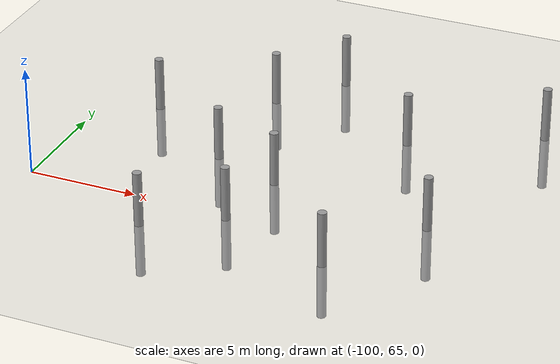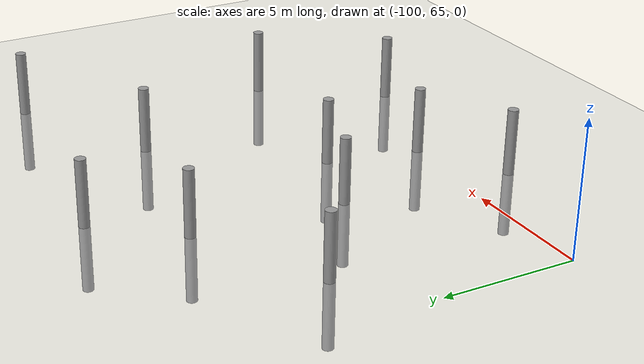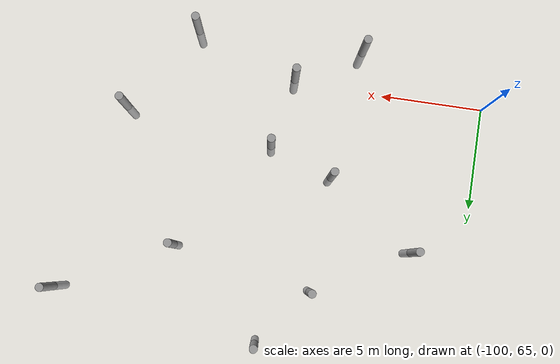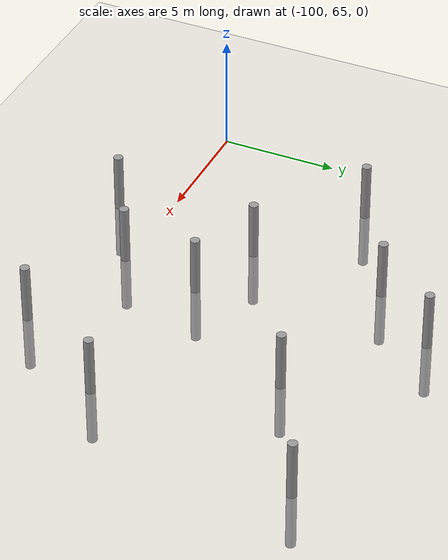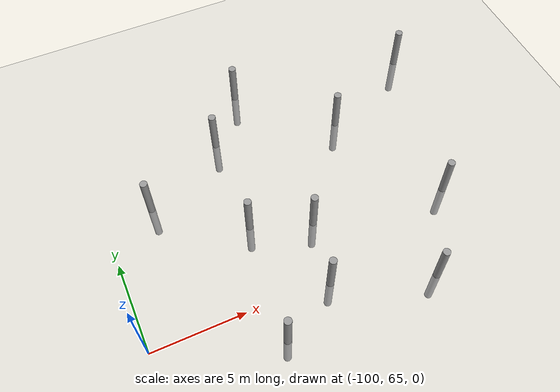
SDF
<sdf version="1.6">
 <world name="default">
  <model name="ground_plane">
   <static>1</static>
   <link name="link">
    <collision name="collision">
     <geometry><plane><normal>0 0 1</normal><size>100 100</size></plane></geometry>
     <surface><friction><ode><mu>100</mu><mu2>50</mu2></ode></friction></surface>
    </collision>
    <visual name="visual">
     <cast_shadows>0</cast_shadows>
     <geometry><plane><normal>0 0 1</normal><size>100 100</size></plane></geometry>
     <material>
      <script><uri>file://media/materials/scripts/gazebo.material</uri><name>Gazebo/Grey</name></script>
     </material>
    </visual>
   </link>
  </model>
  <model name="empty_pillars">
   <model name="empty_pillar">
    <link name="link">
     <inertial>
      <mass>1</mass>
      <inertia><ixx>0.145833</ixx><ixy>0</ixy><ixz>0</ixz><iyy>0.145833</iyy><iyz>0</iyz><izz>0.125</izz></inertia>
     </inertial>
     <visual name="visual">
      <geometry><cylinder><radius>0.2</radius><length>5</length></cylinder></geometry>
      <material>
       <script><name>Gazebo/Grey</name><uri>file://media/materials/scripts/gazebo.material</uri></script>
       <shader type="vertex"><normal_map>__default__</normal_map></shader>
       <ambient>0.3 0.3 0.3 1</ambient>
       <diffuse>0.7 0.7 0.7 1</diffuse>
       <specular>0.01 0.01 0.01 1</specular>
       <emissive>0 0 0 1</emissive>
      </material>
     </visual>
     <collision name="collision">
      <geometry><cylinder><radius>0.05</radius><length>5</length></cylinder></geometry>
      <surface>
       <friction>
        <ode><mu>1</mu><mu2>1</mu2><fdir1>0 0 0</fdir1><slip1>0</slip1><slip2>0</slip2></ode>
        <torsional>
         <coefficient>1</coefficient>
         <patch_radius>0</patch_radius>
         <surface_radius>0</surface_radius>
         <use_patch_radius>1</use_patch_radius>
         <ode><slip>0</slip></ode>
        </torsional>
       </friction>
       <bounce><restitution_coefficient>0</restitution_coefficient><threshold>1e+06</threshold></bounce>
       <contact>
        <collide_without_contact>0</collide_without_contact>
        <collide_without_contact_bitmask>1</collide_without_contact_bitmask>
        <collide_bitmask>1</collide_bitmask>
        <ode>
         <soft_cfm>0</soft_cfm>
         <soft_erp>0.2</soft_erp>
         <kp>1e+13</kp>
         <kd>1</kd>
         <max_vel>0.01</max_vel>
         <min_depth>0</min_depth>
        </ode>
        <bullet>
         <split_impulse>1</split_impulse>
         <split_impulse_penetration_threshold>-0.01</split_impulse_penetration_threshold>
         <soft_cfm>0</soft_cfm>
         <soft_erp>0.2</soft_erp>
         <kp>1e+13</kp>
         <kd>1</kd>
        </bullet>
       </contact>
      </surface>
     </collision>
    </link>
    <static>0</static>
    <pose>-3.84527 -0.717439 0 0 -0 0</pose>
   </model>
   <model name="empty_pillar_clone_13">
    <link name="link">
     <inertial>
      <mass>1</mass>
      <inertia><ixx>0.145833</ixx><ixy>0</ixy><ixz>0</ixz><iyy>0.145833</iyy><iyz>0</iyz><izz>0.125</izz></inertia>
     </inertial>
     <visual name="visual">
      <geometry><cylinder><radius>0.2</radius><length>5</length></cylinder></geometry>
      <material>
       <script><name>Gazebo/Grey</name><uri>file://media/materials/scripts/gazebo.material</uri></script>
       <shader type="vertex"><normal_map>__default__</normal_map></shader>
       <ambient>0.3 0.3 0.3 1</ambient>
       <diffuse>0.7 0.7 0.7 1</diffuse>
       <specular>0.01 0.01 0.01 1</specular>
       <emissive>0 0 0 1</emissive>
      </material>
     </visual>
     <collision name="collision">
      <geometry><cylinder><radius>0.05</radius><length>5</length></cylinder></geometry>
      <surface>
       <friction>
        <ode><mu>1</mu><mu2>1</mu2><fdir1>0 0 0</fdir1><slip1>0</slip1><slip2>0</slip2></ode>
        <torsional>
         <coefficient>1</coefficient>
         <patch_radius>0</patch_radius>
         <surface_radius>0</surface_radius>
         <use_patch_radius>1</use_patch_radius>
         <ode><slip>0</slip></ode>
        </torsional>
       </friction>
       <bounce><restitution_coefficient>0</restitution_coefficient><threshold>1e+06</threshold></bounce>
       <contact>
        <collide_without_contact>0</collide_without_contact>
        <collide_without_contact_bitmask>1</collide_without_contact_bitmask>
        <collide_bitmask>1</collide_bitmask>
        <ode>
         <soft_cfm>0</soft_cfm>
         <soft_erp>0.2</soft_erp>
         <kp>1e+13</kp>
         <kd>1</kd>
         <max_vel>0.01</max_vel>
         <min_depth>0</min_depth>
        </ode>
        <bullet>
         <split_impulse>1</split_impulse>
         <split_impulse_penetration_threshold>-0.01</split_impulse_penetration_threshold>
         <soft_cfm>0</soft_cfm>
         <soft_erp>0.2</soft_erp>
         <kp>1e+13</kp>
         <kd>1</kd>
        </bullet>
       </contact>
      </surface>
     </collision>
    </link>
    <static>0</static>
    <pose>-9.01464 -14.4259 0 0 -0 0</pose>
   </model>
   <model name="empty_pillar_clone_14">
    <link name="link">
     <inertial>
      <mass>1</mass>
      <inertia><ixx>0.145833</ixx><ixy>0</ixy><ixz>0</ixz><iyy>0.145833</iyy><iyz>0</iyz><izz>0.125</izz></inertia>
     </inertial>
     <visual name="visual">
      <geometry><cylinder><radius>0.2</radius><length>5</length></cylinder></geometry>
      <material>
       <script><name>Gazebo/Grey</name><uri>file://media/materials/scripts/gazebo.material</uri></script>
       <shader type="vertex"><normal_map>__default__</normal_map></shader>
       <ambient>0.3 0.3 0.3 1</ambient>
       <diffuse>0.7 0.7 0.7 1</diffuse>
       <specular>0.01 0.01 0.01 1</specular>
       <emissive>0 0 0 1</emissive>
      </material>
     </visual>
     <collision name="collision">
      <geometry><cylinder><radius>0.05</radius><length>5</length></cylinder></geometry>
      <surface>
       <friction>
        <ode><mu>1</mu><mu2>1</mu2><fdir1>0 0 0</fdir1><slip1>0</slip1><slip2>0</slip2></ode>
        <torsional>
         <coefficient>1</coefficient>
         <patch_radius>0</patch_radius>
         <surface_radius>0</surface_radius>
         <use_patch_radius>1</use_patch_radius>
         <ode><slip>0</slip></ode>
        </torsional>
       </friction>
       <bounce><restitution_coefficient>0</restitution_coefficient><threshold>1e+06</threshold></bounce>
       <contact>
        <collide_without_contact>0</collide_without_contact>
        <collide_without_contact_bitmask>1</collide_without_contact_bitmask>
        <collide_bitmask>1</collide_bitmask>
        <ode>
         <soft_cfm>0</soft_cfm>
         <soft_erp>0.2</soft_erp>
         <kp>1e+13</kp>
         <kd>1</kd>
         <max_vel>0.01</max_vel>
         <min_depth>0</min_depth>
        </ode>
        <bullet>
         <split_impulse>1</split_impulse>
         <split_impulse_penetration_threshold>-0.01</split_impulse_penetration_threshold>
         <soft_cfm>0</soft_cfm>
         <soft_erp>0.2</soft_erp>
         <kp>1e+13</kp>
         <kd>1</kd>
        </bullet>
       </contact>
      </surface>
     </collision>
    </link>
    <static>0</static>
    <pose>-14.0146 0.646152 0 0 -0 0</pose>
   </model>
   <model name="empty_pillar_clone_15">
    <link name="link">
     <inertial>
      <mass>1</mass>
      <inertia><ixx>0.145833</ixx><ixy>0</ixy><ixz>0</ixz><iyy>0.145833</iyy><iyz>0</iyz><izz>0.125</izz></inertia>
     </inertial>
     <visual name="visual">
      <geometry><cylinder><radius>0.2</radius><length>5</length></cylinder></geometry>
      <material>
       <script><name>Gazebo/Grey</name><uri>file://media/materials/scripts/gazebo.material</uri></script>
       <shader type="vertex"><normal_map>__default__</normal_map></shader>
       <ambient>0.3 0.3 0.3 1</ambient>
       <diffuse>0.7 0.7 0.7 1</diffuse>
       <specular>0.01 0.01 0.01 1</specular>
       <emissive>0 0 0 1</emissive>
      </material>
     </visual>
     <collision name="collision">
      <geometry><cylinder><radius>0.05</radius><length>5</length></cylinder></geometry>
      <surface>
       <friction>
        <ode><mu>1</mu><mu2>1</mu2><fdir1>0 0 0</fdir1><slip1>0</slip1><slip2>0</slip2></ode>
        <torsional>
         <coefficient>1</coefficient>
         <patch_radius>0</patch_radius>
         <surface_radius>0</surface_radius>
         <use_patch_radius>1</use_patch_radius>
         <ode><slip>0</slip></ode>
        </torsional>
       </friction>
       <bounce><restitution_coefficient>0</restitution_coefficient><threshold>1e+06</threshold></bounce>
       <contact>
        <collide_without_contact>0</collide_without_contact>
        <collide_without_contact_bitmask>1</collide_without_contact_bitmask>
        <collide_bitmask>1</collide_bitmask>
        <ode>
         <soft_cfm>0</soft_cfm>
         <soft_erp>0.2</soft_erp>
         <kp>1e+13</kp>
         <kd>1</kd>
         <max_vel>0.01</max_vel>
         <min_depth>0</min_depth>
        </ode>
        <bullet>
         <split_impulse>1</split_impulse>
         <split_impulse_penetration_threshold>-0.01</split_impulse_penetration_threshold>
         <soft_cfm>0</soft_cfm>
         <soft_erp>0.2</soft_erp>
         <kp>1e+13</kp>
         <kd>1</kd>
        </bullet>
       </contact>
      </surface>
     </collision>
    </link>
    <static>0</static>
    <pose>-9.37193 -3.58732 0 0 -0 0</pose>
   </model>
   <model name="empty_pillar_clone_36">
    <link name="link">
     <inertial>
      <mass>1</mass>
      <inertia><ixx>0.145833</ixx><ixy>0</ixy><ixz>0</ixz><iyy>0.145833</iyy><iyz>0</iyz><izz>0.125</izz></inertia>
     </inertial>
     <visual name="visual">
      <geometry><cylinder><radius>0.2</radius><length>5</length></cylinder></geometry>
      <material>
       <script><name>Gazebo/Grey</name><uri>file://media/materials/scripts/gazebo.material</uri></script>
       <shader type="vertex"><normal_map>__default__</normal_map></shader>
       <ambient>0.3 0.3 0.3 1</ambient>
       <diffuse>0.7 0.7 0.7 1</diffuse>
       <specular>0.01 0.01 0.01 1</specular>
       <emissive>0 0 0 1</emissive>
      </material>
     </visual>
     <collision name="collision">
      <geometry><cylinder><radius>0.05</radius><length>5</length></cylinder></geometry>
      <surface>
       <friction>
        <ode><mu>1</mu><mu2>1</mu2><fdir1>0 0 0</fdir1><slip1>0</slip1><slip2>0</slip2></ode>
        <torsional>
         <coefficient>1</coefficient>
         <patch_radius>0</patch_radius>
         <surface_radius>0</surface_radius>
         <use_patch_radius>1</use_patch_radius>
         <ode><slip>0</slip></ode>
        </torsional>
       </friction>
       <bounce><restitution_coefficient>0</restitution_coefficient><threshold>1e+06</threshold></bounce>
       <contact>
        <collide_without_contact>0</collide_without_contact>
        <collide_without_contact_bitmask>1</collide_without_contact_bitmask>
        <collide_bitmask>1</collide_bitmask>
        <ode>
         <soft_cfm>0</soft_cfm>
         <soft_erp>0.2</soft_erp>
         <kp>1e+13</kp>
         <kd>1</kd>
         <max_vel>0.01</max_vel>
         <min_depth>0</min_depth>
        </ode>
        <bullet>
         <split_impulse>1</split_impulse>
         <split_impulse_penetration_threshold>-0.01</split_impulse_penetration_threshold>
         <soft_cfm>0</soft_cfm>
         <soft_erp>0.2</soft_erp>
         <kp>1e+13</kp>
         <kd>1</kd>
        </bullet>
       </contact>
      </surface>
     </collision>
    </link>
    <static>0</static>
    <pose>-21.0146 -4.84034 0 0 -0 0</pose>
   </model>
   <model name="empty_pillar_clone_37">
    <link name="link">
     <inertial>
      <mass>1</mass>
      <inertia><ixx>0.145833</ixx><ixy>0</ixy><ixz>0</ixz><iyy>0.145833</iyy><iyz>0</iyz><izz>0.125</izz></inertia>
     </inertial>
     <visual name="visual">
      <geometry><cylinder><radius>0.2</radius><length>5</length></cylinder></geometry>
      <material>
       <script><name>Gazebo/Grey</name><uri>file://media/materials/scripts/gazebo.material</uri></script>
       <shader type="vertex"><normal_map>__default__</normal_map></shader>
       <ambient>0.3 0.3 0.3 1</ambient>
       <diffuse>0.7 0.7 0.7 1</diffuse>
       <specular>0.01 0.01 0.01 1</specular>
       <emissive>0 0 0 1</emissive>
      </material>
     </visual>
     <collision name="collision">
      <geometry><cylinder><radius>0.05</radius><length>5</length></cylinder></geometry>
      <surface>
       <friction>
        <ode><mu>1</mu><mu2>1</mu2><fdir1>0 0 0</fdir1><slip1>0</slip1><slip2>0</slip2></ode>
        <torsional>
         <coefficient>1</coefficient>
         <patch_radius>0</patch_radius>
         <surface_radius>0</surface_radius>
         <use_patch_radius>1</use_patch_radius>
         <ode><slip>0</slip></ode>
        </torsional>
       </friction>
       <bounce><restitution_coefficient>0</restitution_coefficient><threshold>1e+06</threshold></bounce>
       <contact>
        <collide_without_contact>0</collide_without_contact>
        <collide_without_contact_bitmask>1</collide_without_contact_bitmask>
        <collide_bitmask>1</collide_bitmask>
        <ode>
         <soft_cfm>0</soft_cfm>
         <soft_erp>0.2</soft_erp>
         <kp>1e+13</kp>
         <kd>1</kd>
         <max_vel>0.01</max_vel>
         <min_depth>0</min_depth>
        </ode>
        <bullet>
         <split_impulse>1</split_impulse>
         <split_impulse_penetration_threshold>-0.01</split_impulse_penetration_threshold>
         <soft_cfm>0</soft_cfm>
         <soft_erp>0.2</soft_erp>
         <kp>1e+13</kp>
         <kd>1</kd>
        </bullet>
       </contact>
      </surface>
     </collision>
    </link>
    <static>0</static>
    <pose>-16.6035 -7.98282 0 0 -0 0</pose>
   </model>
   <model name="empty_pillar_clone_38">
    <link name="link">
     <inertial>
      <mass>1</mass>
      <inertia><ixx>0.145833</ixx><ixy>0</ixy><ixz>0</ixz><iyy>0.145833</iyy><iyz>0</iyz><izz>0.125</izz></inertia>
     </inertial>
     <visual name="visual">
      <geometry><cylinder><radius>0.2</radius><length>5</length></cylinder></geometry>
      <material>
       <script><name>Gazebo/Grey</name><uri>file://media/materials/scripts/gazebo.material</uri></script>
       <shader type="vertex"><normal_map>__default__</normal_map></shader>
       <ambient>0.3 0.3 0.3 1</ambient>
       <diffuse>0.7 0.7 0.7 1</diffuse>
       <specular>0.01 0.01 0.01 1</specular>
       <emissive>0 0 0 1</emissive>
      </material>
     </visual>
     <collision name="collision">
      <geometry><cylinder><radius>0.05</radius><length>5</length></cylinder></geometry>
      <surface>
       <friction>
        <ode><mu>1</mu><mu2>1</mu2><fdir1>0 0 0</fdir1><slip1>0</slip1><slip2>0</slip2></ode>
        <torsional>
         <coefficient>1</coefficient>
         <patch_radius>0</patch_radius>
         <surface_radius>0</surface_radius>
         <use_patch_radius>1</use_patch_radius>
         <ode><slip>0</slip></ode>
        </torsional>
       </friction>
       <bounce><restitution_coefficient>0</restitution_coefficient><threshold>1e+06</threshold></bounce>
       <contact>
        <collide_without_contact>0</collide_without_contact>
        <collide_without_contact_bitmask>1</collide_without_contact_bitmask>
        <collide_bitmask>1</collide_bitmask>
        <ode>
         <soft_cfm>0</soft_cfm>
         <soft_erp>0.2</soft_erp>
         <kp>1e+13</kp>
         <kd>1</kd>
         <max_vel>0.01</max_vel>
         <min_depth>0</min_depth>
        </ode>
        <bullet>
         <split_impulse>1</split_impulse>
         <split_impulse_penetration_threshold>-0.01</split_impulse_penetration_threshold>
         <soft_cfm>0</soft_cfm>
         <soft_erp>0.2</soft_erp>
         <kp>1e+13</kp>
         <kd>1</kd>
        </bullet>
       </contact>
      </surface>
     </collision>
    </link>
    <static>0</static>
    <pose>-16.33 -2.21607 0 0 -0 0</pose>
   </model>
   <model name="empty_pillar_clone_39">
    <link name="link">
     <inertial>
      <mass>1</mass>
      <inertia><ixx>0.145833</ixx><ixy>0</ixy><ixz>0</ixz><iyy>0.145833</iyy><iyz>0</iyz><izz>0.125</izz></inertia>
     </inertial>
     <visual name="visual">
      <geometry><cylinder><radius>0.2</radius><length>5</length></cylinder></geometry>
      <material>
       <script><name>Gazebo/Grey</name><uri>file://media/materials/scripts/gazebo.material</uri></script>
       <shader type="vertex"><normal_map>__default__</normal_map></shader>
       <ambient>0.3 0.3 0.3 1</ambient>
       <diffuse>0.7 0.7 0.7 1</diffuse>
       <specular>0.01 0.01 0.01 1</specular>
       <emissive>0 0 0 1</emissive>
      </material>
     </visual>
     <collision name="collision">
      <geometry><cylinder><radius>0.05</radius><length>5</length></cylinder></geometry>
      <surface>
       <friction>
        <ode><mu>1</mu><mu2>1</mu2><fdir1>0 0 0</fdir1><slip1>0</slip1><slip2>0</slip2></ode>
        <torsional>
         <coefficient>1</coefficient>
         <patch_radius>0</patch_radius>
         <surface_radius>0</surface_radius>
         <use_patch_radius>1</use_patch_radius>
         <ode><slip>0</slip></ode>
        </torsional>
       </friction>
       <bounce><restitution_coefficient>0</restitution_coefficient><threshold>1e+06</threshold></bounce>
       <contact>
        <collide_without_contact>0</collide_without_contact>
        <collide_without_contact_bitmask>1</collide_without_contact_bitmask>
        <collide_bitmask>1</collide_bitmask>
        <ode>
         <soft_cfm>0</soft_cfm>
         <soft_erp>0.2</soft_erp>
         <kp>1e+13</kp>
         <kd>1</kd>
         <max_vel>0.01</max_vel>
         <min_depth>0</min_depth>
        </ode>
        <bullet>
         <split_impulse>1</split_impulse>
         <split_impulse_penetration_threshold>-0.01</split_impulse_penetration_threshold>
         <soft_cfm>0</soft_cfm>
         <soft_erp>0.2</soft_erp>
         <kp>1e+13</kp>
         <kd>1</kd>
        </bullet>
       </contact>
      </surface>
     </collision>
    </link>
    <static>0</static>
    <pose>-13.4361 -9.12638 0 0 -0 0</pose>
   </model>
   <model name="empty_pillar_clone_40">
    <link name="link">
     <inertial>
      <mass>1</mass>
      <inertia><ixx>0.145833</ixx><ixy>0</ixy><ixz>0</ixz><iyy>0.145833</iyy><iyz>0</iyz><izz>0.125</izz></inertia>
     </inertial>
     <visual name="visual">
      <geometry><cylinder><radius>0.2</radius><length>5</length></cylinder></geometry>
      <material>
       <script><name>Gazebo/Grey</name><uri>file://media/materials/scripts/gazebo.material</uri></script>
       <shader type="vertex"><normal_map>__default__</normal_map></shader>
       <ambient>0.3 0.3 0.3 1</ambient>
       <diffuse>0.7 0.7 0.7 1</diffuse>
       <specular>0.01 0.01 0.01 1</specular>
       <emissive>0 0 0 1</emissive>
      </material>
     </visual>
     <collision name="collision">
      <geometry><cylinder><radius>0.05</radius><length>5</length></cylinder></geometry>
      <surface>
       <friction>
        <ode><mu>1</mu><mu2>1</mu2><fdir1>0 0 0</fdir1><slip1>0</slip1><slip2>0</slip2></ode>
        <torsional>
         <coefficient>1</coefficient>
         <patch_radius>0</patch_radius>
         <surface_radius>0</surface_radius>
         <use_patch_radius>1</use_patch_radius>
         <ode><slip>0</slip></ode>
        </torsional>
       </friction>
       <bounce><restitution_coefficient>0</restitution_coefficient><threshold>1e+06</threshold></bounce>
       <contact>
        <collide_without_contact>0</collide_without_contact>
        <collide_without_contact_bitmask>1</collide_without_contact_bitmask>
        <collide_bitmask>1</collide_bitmask>
        <ode>
         <soft_cfm>0</soft_cfm>
         <soft_erp>0.2</soft_erp>
         <kp>1e+13</kp>
         <kd>1</kd>
         <max_vel>0.01</max_vel>
         <min_depth>0</min_depth>
        </ode>
        <bullet>
         <split_impulse>1</split_impulse>
         <split_impulse_penetration_threshold>-0.01</split_impulse_penetration_threshold>
         <soft_cfm>0</soft_cfm>
         <soft_erp>0.2</soft_erp>
         <kp>1e+13</kp>
         <kd>1</kd>
        </bullet>
       </contact>
      </surface>
     </collision>
    </link>
    <static>0</static>
    <pose>-17.318 -14.4851 0 0 -0 0</pose>
   </model>
   <model name="empty_pillar_clone_41">
    <link name="link">
     <inertial>
      <mass>1</mass>
      <inertia><ixx>0.145833</ixx><ixy>0</ixy><ixz>0</ixz><iyy>0.145833</iyy><iyz>0</iyz><izz>0.125</izz></inertia>
     </inertial>
     <visual name="visual">
      <geometry><cylinder><radius>0.2</radius><length>5</length></cylinder></geometry>
      <material>
       <script><name>Gazebo/Grey</name><uri>file://media/materials/scripts/gazebo.material</uri></script>
       <shader type="vertex"><normal_map>__default__</normal_map></shader>
       <ambient>0.3 0.3 0.3 1</ambient>
       <diffuse>0.7 0.7 0.7 1</diffuse>
       <specular>0.01 0.01 0.01 1</specular>
       <emissive>0 0 0 1</emissive>
      </material>
     </visual>
     <collision name="collision">
      <geometry><cylinder><radius>0.05</radius><length>5</length></cylinder></geometry>
      <surface>
       <friction>
        <ode><mu>1</mu><mu2>1</mu2><fdir1>0 0 0</fdir1><slip1>0</slip1><slip2>0</slip2></ode>
        <torsional>
         <coefficient>1</coefficient>
         <patch_radius>0</patch_radius>
         <surface_radius>0</surface_radius>
         <use_patch_radius>1</use_patch_radius>
         <ode><slip>0</slip></ode>
        </torsional>
       </friction>
       <bounce><restitution_coefficient>0</restitution_coefficient><threshold>1e+06</threshold></bounce>
       <contact>
        <collide_without_contact>0</collide_without_contact>
        <collide_without_contact_bitmask>1</collide_without_contact_bitmask>
        <collide_bitmask>1</collide_bitmask>
        <ode>
         <soft_cfm>0</soft_cfm>
         <soft_erp>0.2</soft_erp>
         <kp>1e+13</kp>
         <kd>1</kd>
         <max_vel>0.01</max_vel>
         <min_depth>0</min_depth>
        </ode>
        <bullet>
         <split_impulse>1</split_impulse>
         <split_impulse_penetration_threshold>-0.01</split_impulse_penetration_threshold>
         <soft_cfm>0</soft_cfm>
         <soft_erp>0.2</soft_erp>
         <kp>1e+13</kp>
         <kd>1</kd>
        </bullet>
       </contact>
      </surface>
     </collision>
    </link>
    <static>0</static>
    <pose>-14.1448 -12.6326 0 0 -0 0</pose>
   </model>
   <model name="empty_pillar_clone_5">
    <link name="link">
     <inertial>
      <mass>1</mass>
      <inertia><ixx>0.145833</ixx><ixy>0</ixy><ixz>0</ixz><iyy>0.145833</iyy><iyz>0</iyz><izz>0.125</izz></inertia>
     </inertial>
     <visual name="visual">
      <geometry><cylinder><radius>0.2</radius><length>5</length></cylinder></geometry>
      <material>
       <script><name>Gazebo/Grey</name><uri>file://media/materials/scripts/gazebo.material</uri></script>
       <shader type="vertex"><normal_map>__default__</normal_map></shader>
       <ambient>0.3 0.3 0.3 1</ambient>
       <diffuse>0.7 0.7 0.7 1</diffuse>
       <specular>0.01 0.01 0.01 1</specular>
       <emissive>0 0 0 1</emissive>
      </material>
     </visual>
     <collision name="collision">
      <geometry><cylinder><radius>0.05</radius><length>5</length></cylinder></geometry>
      <surface>
       <friction>
        <ode><mu>1</mu><mu2>1</mu2><fdir1>0 0 0</fdir1><slip1>0</slip1><slip2>0</slip2></ode>
        <torsional>
         <coefficient>1</coefficient>
         <patch_radius>0</patch_radius>
         <surface_radius>0</surface_radius>
         <use_patch_radius>1</use_patch_radius>
         <ode><slip>0</slip></ode>
        </torsional>
       </friction>
       <bounce><restitution_coefficient>0</restitution_coefficient><threshold>1e+06</threshold></bounce>
       <contact>
        <collide_without_contact>0</collide_without_contact>
        <collide_without_contact_bitmask>1</collide_without_contact_bitmask>
        <collide_bitmask>1</collide_bitmask>
        <ode>
         <soft_cfm>0</soft_cfm>
         <soft_erp>0.2</soft_erp>
         <kp>1e+13</kp>
         <kd>1</kd>
         <max_vel>0.01</max_vel>
         <min_depth>0</min_depth>
        </ode>
        <bullet>
         <split_impulse>1</split_impulse>
         <split_impulse_penetration_threshold>-0.01</split_impulse_penetration_threshold>
         <soft_cfm>0</soft_cfm>
         <soft_erp>0.2</soft_erp>
         <kp>1e+13</kp>
         <kd>1</kd>
        </bullet>
       </contact>
      </surface>
     </collision>
    </link>
    <static>0</static>
    <pose>-6.03595 -10.0932 0 0 -0 0</pose>
   </model>
   <static>0</static>
   <pose>-76.4247 77.3975 0 0 -0 0</pose>
  </model>
 </world>
</sdf>
